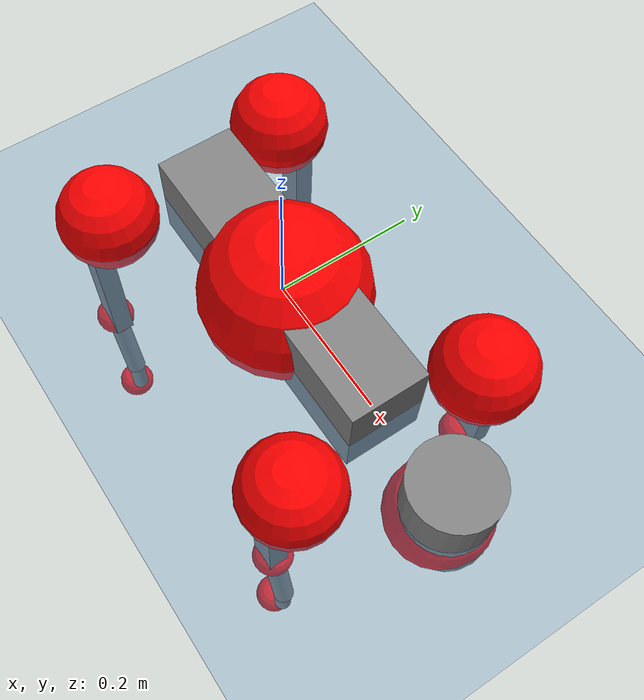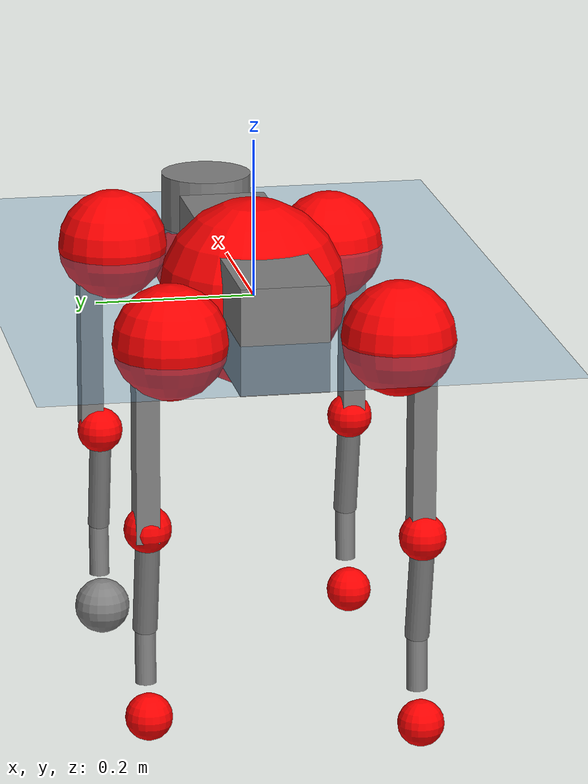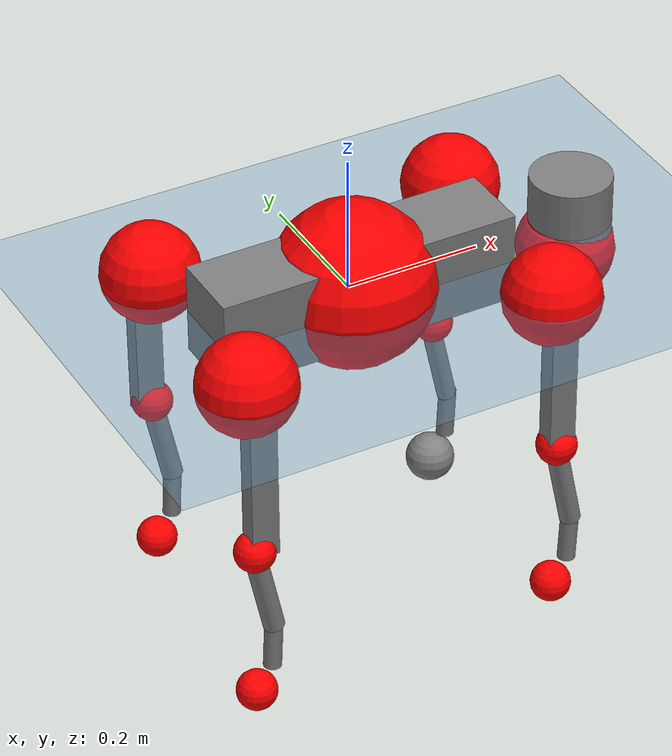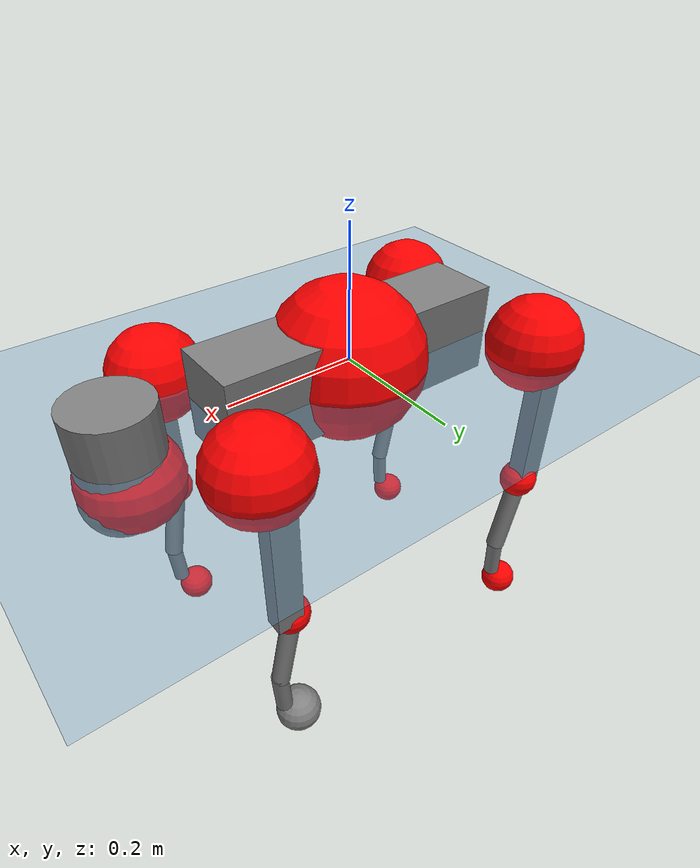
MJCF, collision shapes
<mujoco model="go2">
  <compiler angle="radian" assetdir="assets" balanceinertia="true" inertiafromgeom="false"/>

  <option timestep="0.005" density="1.2" viscosity="2e-05"/>

  <size nkey="1"/>

  <visual>
    <quality shadowsize="8192"/>
    <map shadowclip="0.5"/>
  </visual>

  <default>
    <default class="/">
      <geom contype="0" conaffinity="0" group="1" solref="-1000 -80"/>
      <site size="0.01 0.005 0.005" group="5"/>
      <general forcelimited="true" biastype="affine" gainprm="20" biasprm="0 -20 -0.5"/>
      <default class="go2">
        <joint armature="0.01" damping="0.01" frictionloss="0.2"/>
        <geom condim="1" margin="0.001"/>
        <default class="visual">
          <geom type="mesh" group="2"/>
        </default>
        <default class="collision">
          <geom group="3"/>
          <default class="foot">
            <geom size="0.022 0 0" condim="6" priority="1" friction="0.8 0.02 0.01" solimp="0.015 1 0.022"/>
          </default>
        </default>
        <default class="reward_collision_sphere">
          <geom group="5" rgba="1 0 0 1"/>
        </default>
      </default>
    </default>
  </default>

  <asset>
    <texture type="skybox" colorspace="auto" name="//unnamed_texture_0" builtin="gradient" rgb1="0.95 0.95 0.95" rgb2="0.95 0.95 0.95" width="100" height="600"/>
    <texture type="2d" colorspace="auto" name="texplane" builtin="checker" rgb1="0.345 0.575 0.748" rgb2="0.345 0.575 0.748" markrgb="1 1 1" width="512" height="512"/>
    <material name="MatPlane" class="/" texture="texplane" texuniform="true" texrepeat="2 2" specular="0.9"/>
    <material name="metal" class="/" rgba="0.9 0.95 0.95 1"/>
    <material name="black" class="/" rgba="0 0 0 1"/>
    <material name="white" class="/"/>
    <material name="gray" class="/" rgba="0.671705 0.692426 0.77427 1"/>
    <mesh name="base_0" class="/" file="base_0.obj"/>
    <mesh name="base_1" class="/" file="base_1.obj"/>
    <mesh name="base_2" class="/" file="base_2.obj"/>
    <mesh name="base_3" class="/" file="base_3.obj"/>
    <mesh name="base_4" class="/" file="base_4.obj"/>
    <mesh name="hip_0" class="/" file="hip_0.obj"/>
    <mesh name="hip_1" class="/" file="hip_1.obj"/>
    <mesh name="thigh_0" class="/" file="thigh_0.obj"/>
    <mesh name="thigh_1" class="/" file="thigh_1.obj"/>
    <mesh name="thigh_mirror_0" class="/" file="thigh_mirror_0.obj"/>
    <mesh name="thigh_mirror_1" class="/" file="thigh_mirror_1.obj"/>
    <mesh name="calf_0" class="/" file="calf_0.obj"/>
    <mesh name="calf_1" class="/" file="calf_1.obj"/>
    <mesh name="calf_mirror_0" class="/" file="calf_mirror_0.obj"/>
    <mesh name="calf_mirror_1" class="/" file="calf_mirror_1.obj"/>
    <mesh name="foot" class="/" file="foot.obj"/>
  </asset>

  <worldbody>
    <geom name="floor" class="/" size="100 100 0.125" type="plane" group="0" material="MatPlane"/>
    <light name="toplight_shadow" class="/" pos="0 0 5" dir="0.0990148 0.0990148 -0.990148" type="directional" ambient="0.04 0.04 0.04" diffuse="0.55 0.55 0.55" specular="0.12 0.12 0.12"/>
    <light name="toplight_fill" class="/" pos="0 0 5" dir="0.0990148 0.0990148 -0.990148" type="directional" castshadow="false" ambient="0.04 0.04 0.04" diffuse="0.3 0.3 0.3" specular="0.08 0.08 0.08"/>
    <body name="trunk" childclass="go2" pos="0.00655033 0.000665664 0.00402162" quat="0.999996 0.00079765 -0.00230336 0.00132635">
      <inertial pos="0.0296871 -0.00454101 -0.00423989" quat="0.0266807 0.724326 0.0219514 0.688591" mass="11.5457" diaginertia="0.234195 0.239993 0.0402538"/>
      <joint name="//unnamed_joint_0" type="free" armature="0" damping="0" frictionloss="0"/>
      <geom name="//unnamed_geom_1" class="visual" material="black" mesh="base_0"/>
      <geom name="//unnamed_geom_2" class="visual" material="black" mesh="base_1"/>
      <geom name="//unnamed_geom_3" class="visual" material="black" mesh="base_2"/>
      <geom name="//unnamed_geom_4" class="visual" material="white" mesh="base_3"/>
      <geom name="//unnamed_geom_5" class="visual" material="gray" mesh="base_4"/>
      <geom name="trunk_1" class="collision" size="0.222574 0.0553181 0.0674466" type="box"/>
      <geom name="trunk_2" class="collision" size="0.0591637 0.0532473" pos="0.344546 0 0.0114438" type="cylinder"/>
      <geom name="trunk_3" class="collision" size="0.0556139" pos="0.354218 0 -0.0686625"/>
      <geom name="//unnamed_geom_9" class="reward_collision_sphere" size="0.118327"/>
      <geom name="//unnamed_geom_10" class="reward_collision_sphere" size="0.0709964" pos="0.338501 0 -0.0514969"/>
      <site name="imu" pos="-0.0539575 0.0587074 0.0595817" size="0.0118327"/>
      <camera name="track" pos="0 -2.39302 0" quat="0.707107 0.707107 0 0" mode="trackcom"/>
      <camera name="ego_camera" pos="0.377187 0 0.0514969" quat="-0.5 -0.5 0.5 0.5"/>
      <body name="FL_hip" pos="0.233777 0.0582538 0.00372627" quat="0.999984 -0.00150378 0.000431458 -0.00544153">
        <inertial pos="-0.00235296 0.00410294 0.000826162" quat="0.513927 0.497302 0.478475 0.50954" mass="0.987482" diaginertia="0.00198808 0.00129508 0.000781734"/>
        <joint name="FL_hip_joint" pos="0 0 0" axis="0.999688 -0.0205082 0.0142246" stiffness="0.00635398" range="-1.24033 1.02843" armature="0.00732444" damping="0.0242304" frictionloss="0.230243"/>
        <geom name="//unnamed_geom_11" class="visual" material="metal" mesh="hip_0"/>
        <geom name="//unnamed_geom_12" class="visual" material="gray" mesh="hip_1"/>
        <geom name="//unnamed_geom_13" class="collision" size="0.0544306 0.0236655" pos="0 0.095721 0" quat="0.707107 0.707107 0 0" type="cylinder"/>
        <geom name="//unnamed_geom_14" class="reward_collision_sphere" size="0.0709964" pos="0 0.0837558 0"/>
        <body name="FL_thigh" pos="-0.0024968 0.115218 0.00244881" quat="1 8.71846e-06 -4.31673e-06 6.3666e-06">
          <inertial pos="-0.00615824 -0.0168637 -0.0256325" quat="0.828815 0.0786095 -0.0197129 0.553622" mass="1.94289" diaginertia="0.0157421 0.0154495 0.00176113"/>
          <joint name="FL_thigh_joint" pos="0 0 0" axis="-0.00101905 0.999998 -0.00188198" range="-1.55716 3.26721" armature="0.0145796" damping="0.0663199" frictionloss="0.240797"/>
          <geom name="//unnamed_geom_15" class="visual" material="metal" mesh="thigh_0"/>
          <geom name="//unnamed_geom_16" class="visual" material="gray" mesh="thigh_1"/>
          <geom name="//unnamed_geom_17" class="collision" size="0.126019 0.0144951 0.0201157" pos="0 0 -0.121876" quat="0.707107 0 0.707107 0" type="box"/>
          <body name="FL_calf" pos="-0.0121017 -0.0105257 -0.25012" quat="1 1.4283e-05 3.25134e-05 0.000199817">
            <inertial pos="0.00896553 0.00399305 -0.167881" quat="0.70974 0.00318397 -0.00592618 0.704432" mass="0.358832" diaginertia="0.00362363 0.00368891 0.000107111"/>
            <joint name="FL_calf_joint" pos="0 0 0" axis="0.00132839 0.999966 0.00818572" stiffness="0.0568443" range="-2.8425 -0.659212" armature="0.0120315" damping="0" frictionloss="0.22588"/>
            <geom name="//unnamed_geom_18" class="visual" material="gray" mesh="calf_0"/>
            <geom name="//unnamed_geom_19" class="visual" material="black" mesh="calf_1"/>
            <geom name="FL_calf0" class="collision" size="0.0141993 0.0709964" pos="0.00967147 0 -0.0686625" quat="0.994493 0 -0.104807 0" type="cylinder"/>
            <geom name="//unnamed_geom_21" class="collision" size="0.013016 0.0384564" pos="0.0241787 0 -0.169368" quat="0.999688 0 0.0249974 0" type="cylinder"/>
            <geom name="//unnamed_geom_22" class="visual" pos="0 0 -0.243752" quat="1 0 0 0" material="black" mesh="foot"/>
            <geom name="FL_foot" class="foot" size="0.0361909" pos="-0.00241787 0 -0.243752"/>
            <geom name="//unnamed_geom_24" class="reward_collision_sphere" size="0.0295818"/>
            <geom name="//unnamed_geom_25" class="reward_collision_sphere" size="0.0295818" pos="-0.00241787 0 -0.243752"/>
            <site name="FL_foot" class="foot" pos="-0.00241787 0 -0.243752" size="0.0118327"/>
          </body>
        </body>
      </body>
      <body name="FR_hip" pos="0.230008 -0.0596988 -0.0102193" quat="0.999999 -0.00064661 -8.49103e-05 -0.00077282">
        <inertial pos="-0.00554249 0.00378558 0.00190694" quat="0.50047 0.467167 0.529988 0.500398" mass="0.970146" diaginertia="0.0020931 0.00122663 0.000821605"/>
        <joint name="FR_hip_joint" pos="0 0 0" axis="0.999975 0.00168232 -0.00684566" stiffness="0.00777448" range="-1.18427 1.08023" armature="0.0115112" damping="0" frictionloss="0.213732"/>
        <geom name="//unnamed_geom_26" class="visual" pos="0 4.5419e-10 1.94812e-08" quat="4.63268e-05 1 0 0" material="metal" mesh="hip_0"/>
        <geom name="//unnamed_geom_27" class="visual" pos="0 7.36297e-10 -4.81844e-08" quat="4.63268e-05 1 0 0" material="gray" mesh="hip_1"/>
        <geom name="//unnamed_geom_28" class="collision" size="0.0544306 0.0236655" pos="0 -0.095721 0" quat="0.707107 0.707107 0 0" type="cylinder"/>
        <geom name="//unnamed_geom_29" class="reward_collision_sphere" size="0.0709964" pos="0 -0.0837558 0"/>
        <body name="FR_thigh" pos="-0.00367311 -0.114436 0.00766193" quat="1 -0.000478019 0.000298902 0.000576686">
          <inertial pos="-0.00348145 0.0263151 -0.0269341" quat="0.559669 0.000937052 0.0290835 0.828205" mass="1.63275" diaginertia="0.0141208 0.012444 0.00149808"/>
          <joint name="FR_thigh_joint" pos="0 0 0" axis="-0.00840538 -0.999951 -0.00531839" stiffness="0.00983951" range="-3.28708 1.41813" armature="0.016008" damping="0.0171301" frictionloss="0.231695"/>
          <geom name="//unnamed_geom_30" class="visual" material="metal" mesh="thigh_mirror_0"/>
          <geom name="//unnamed_geom_31" class="visual" material="gray" mesh="thigh_mirror_1"/>
          <geom name="//unnamed_geom_32" class="collision" size="0.126019 0.0144951 0.0201157" pos="0 0 -0.121876" quat="0.707107 0 0.707107 0" type="box"/>
          <body name="FR_calf" pos="0.000843077 0.00195243 -0.242529" quat="1 -0.000101064 0.000287288 2.64227e-05">
            <inertial pos="0.00762281 0.00240802 -0.17392" quat="0.69764 -0.0221736 -0.00941386 0.716044" mass="0.502696" diaginertia="0.00426991 0.00353528 0.000134284"/>
            <joint name="FR_calf_joint" pos="0 0 0" axis="0.00660545 -0.999966 0.00492453" stiffness="0.0228231" range="0.871807 2.8077" armature="0.0076738" damping="0.00388439" frictionloss="0.239967"/>
            <geom name="//unnamed_geom_33" class="visual" material="gray" mesh="calf_mirror_0"/>
            <geom name="//unnamed_geom_34" class="visual" material="black" mesh="calf_mirror_1"/>
            <geom name="FR_calf0" class="collision" size="0.0153826 0.0709964" pos="0.0120893 0 -0.0686625" quat="0.995004 0 -0.0998334 0" type="cylinder"/>
            <geom name="//unnamed_geom_36" class="collision" size="0.013016 0.0384564" pos="0.0241787 0 -0.169368" quat="0.999688 0 0.0249974 0" type="cylinder"/>
            <geom name="//unnamed_geom_37" class="visual" pos="0 0 -0.243752" quat="1 0 0 0" material="black" mesh="foot"/>
            <geom name="FR_foot" class="foot" size="0.0212056" pos="-0.00241787 0 -0.243752"/>
            <geom name="//unnamed_geom_39" class="reward_collision_sphere" size="0.0295818"/>
            <geom name="//unnamed_geom_40" class="reward_collision_sphere" size="0.0295818" pos="-0.00241787 0 -0.243752"/>
            <site name="FR_foot" class="foot" pos="-0.00241787 0 -0.243752" size="0.0118327"/>
          </body>
        </body>
      </body>
      <body name="RL_hip" pos="-0.234088 0.0592253 0.00991297" quat="1 -0.000572263 0.000189778 -0.000180747">
        <inertial pos="0.00800573 0.000892367 0.00964595" quat="0.504037 0.496188 0.500065 0.499679" mass="0.976902" diaginertia="0.00200942 0.00155259 0.000947479"/>
        <joint name="RL_hip_joint" pos="0 0 0" axis="-0.999934 0.00891964 0.0072293" range="-1.27426 0.858859" armature="0.0117045" damping="0.0377261" frictionloss="0.125239"/>
        <geom name="//unnamed_geom_41" class="visual" pos="-5.62404e-10 0 -1.10244e-07" quat="4.63268e-05 0 1 0" material="metal" mesh="hip_0"/>
        <geom name="//unnamed_geom_42" class="visual" pos="-9.11724e-10 0 -9.77708e-08" quat="4.63268e-05 0 1 0" material="gray" mesh="hip_1"/>
        <geom name="//unnamed_geom_43" class="collision" size="0.0544306 0.0236655" pos="0 0.095721 0" quat="0.707107 0.707107 0 0" type="cylinder"/>
        <geom name="//unnamed_geom_44" class="reward_collision_sphere" size="0.0709964" pos="0 0.0837558 0"/>
        <body name="RL_thigh" pos="0.00124296 0.114708 -0.00142607" quat="1 5.00907e-06 -5.69713e-05 3.2163e-05">
          <inertial pos="0.00458025 -0.0263169 -0.025756" quat="0.815508 0.115154 0.00806717 0.567117" mass="1.83481" diaginertia="0.0166825 0.0141037 0.00186077"/>
          <joint name="RL_thigh_joint" pos="0 0 0" axis="-0.0446826 0.998991 -0.00444148" stiffness="0.00853388" range="-0.336335 4.54031" armature="0.0105055" damping="0.00177051" frictionloss="0.217524"/>
          <geom name="//unnamed_geom_45" class="visual" material="metal" mesh="thigh_0"/>
          <geom name="//unnamed_geom_46" class="visual" material="gray" mesh="thigh_1"/>
          <geom name="//unnamed_geom_47" class="collision" size="0.126019 0.0144951 0.0201157" pos="0 0 -0.121876" quat="0.707107 0 0.707107 0" type="box"/>
          <body name="RL_calf" pos="0.00558459 -0.00318827 -0.236746" quat="1 8.07235e-05 -0.000701678 -0.000143935">
            <inertial pos="0.00285247 0.00442288 -0.167774" quat="0.701694 -0.0147985 0.0285433 0.711752" mass="0.440575" diaginertia="0.00386602 0.00351244 0.000108374"/>
            <joint name="RL_calf_joint" pos="0 0 0" axis="0.00530831 0.999772 0.0206714" stiffness="0.0589814" range="-2.76117 -0.829016" armature="0.0117871" damping="0.00760465" frictionloss="0.178088"/>
            <geom name="//unnamed_geom_48" class="visual" material="gray" mesh="calf_0"/>
            <geom name="//unnamed_geom_49" class="visual" material="black" mesh="calf_1"/>
            <geom name="RL_calf0" class="collision" size="0.0153826 0.0709964" pos="0.0120893 0 -0.0686625" quat="0.995004 0 -0.0998334 0" type="cylinder"/>
            <geom name="//unnamed_geom_51" class="collision" size="0.013016 0.0384564" pos="0.0241787 0 -0.169368" quat="0.999688 0 0.0249974 0" type="cylinder"/>
            <geom name="//unnamed_geom_52" class="visual" pos="0 0 -0.243752" quat="1 0 0 0" material="black" mesh="foot"/>
            <geom name="RL_foot" class="foot" size="0.023551" pos="-0.00241787 0 -0.243752"/>
            <geom name="//unnamed_geom_54" class="reward_collision_sphere" size="0.0295818"/>
            <geom name="//unnamed_geom_55" class="reward_collision_sphere" size="0.0295818" pos="-0.00241787 0 -0.243752"/>
            <site name="RL_foot" class="foot" pos="-0.00241787 0 -0.243752" size="0.0118327"/>
          </body>
        </body>
      </body>
      <body name="RR_hip" pos="-0.232557 -0.0542543 0.000103632" quat="0.999999 -0.000995929 6.73458e-05 0.000725455">
        <inertial pos="0.00819342 -0.011487 0.00643346" quat="0.499287 0.495835 0.499103 0.505723" mass="1.22771" diaginertia="0.00258966 0.00166467 0.00106803"/>
        <joint name="RR_hip_joint" pos="0 0 0" axis="-0.999939 0.00629076 -0.0090724" range="-1.09639 1.20484" armature="0.0142832" damping="0.0543944" frictionloss="0.210417"/>
        <geom name="//unnamed_geom_56" class="visual" pos="5.61974e-10 4.5419e-10 -1.29725e-07" quat="2.14617e-09 4.63268e-05 4.63268e-05 -1" material="metal" mesh="hip_0"/>
        <geom name="//unnamed_geom_57" class="visual" pos="9.12787e-10 7.36297e-10 -4.95865e-08" quat="2.14617e-09 4.63268e-05 4.63268e-05 -1" material="gray" mesh="hip_1"/>
        <geom name="//unnamed_geom_58" class="collision" size="0.0544306 0.0236655" pos="0 -0.095721 0" quat="0.707107 0.707107 0 0" type="cylinder"/>
        <geom name="//unnamed_geom_59" class="reward_collision_sphere" size="0.0709964" pos="0 -0.0837558 0"/>
        <body name="RR_thigh" pos="0.000341699 -0.113625 -0.0101351" quat="1 4.7598e-06 4.444e-05 8.78525e-05">
          <inertial pos="0.000879321 0.0200685 -0.0376474" quat="0.551333 -0.0197203 0.0848333 0.829727" mass="2.31116" diaginertia="0.0161912 0.0155258 0.00171161"/>
          <joint name="RR_thigh_joint" pos="0 0 0" axis="0.0127111 -0.999856 -0.01126" range="-4.33508 0.337316" armature="0.0125894" damping="0.0090627" frictionloss="0.333295"/>
          <geom name="//unnamed_geom_60" class="visual" material="metal" mesh="thigh_mirror_0"/>
          <geom name="//unnamed_geom_61" class="visual" material="gray" mesh="thigh_mirror_1"/>
          <geom name="//unnamed_geom_62" class="collision" size="0.126019 0.0144951 0.0201157" pos="0 0 -0.121876" quat="0.707107 0 0.707107 0" type="box"/>
          <body name="RR_calf" pos="-0.0104426 -0.000609695 -0.243963" quat="1 -6.96972e-05 -5.31469e-05 3.30396e-05">
            <inertial pos="0.00552901 0.000759016 -0.162624" quat="0.703433 -0.00622641 0.00359464 0.710725" mass="0.467778" diaginertia="0.00415018 0.00379136 0.000114327"/>
            <joint name="RR_calf_joint" pos="0 0 0" axis="0.0238721 -0.999664 -0.010102" stiffness="0.0363533" range="0.84079 2.62526" armature="0.0137567" damping="0.0609053" frictionloss="0.215971"/>
            <geom name="//unnamed_geom_63" class="visual" material="gray" mesh="calf_mirror_0"/>
            <geom name="//unnamed_geom_64" class="visual" material="black" mesh="calf_mirror_1"/>
            <geom name="RR_calf0" class="collision" size="0.0153826 0.0709964" pos="0.0120893 0 -0.0686625" quat="0.995004 0 -0.0998334 0" type="cylinder"/>
            <geom name="//unnamed_geom_66" class="collision" size="0.013016 0.0384564" pos="0.0241787 0 -0.169368" quat="0.999688 0 0.0249974 0" type="cylinder"/>
            <geom name="//unnamed_geom_67" class="visual" pos="0 0 -0.243752" quat="1 0 0 0" material="black" mesh="foot"/>
            <geom name="RR_foot" class="foot" size="0.0258067" pos="-0.00241787 0 -0.243752"/>
            <geom name="//unnamed_geom_69" class="reward_collision_sphere" size="0.0295818"/>
            <geom name="//unnamed_geom_70" class="reward_collision_sphere" size="0.0295818" pos="-0.00241787 0 -0.243752"/>
            <site name="RR_foot" class="foot" pos="-0.00241787 0 -0.243752" size="0.0118327"/>
          </body>
        </body>
      </body>
    </body>
  </worldbody>

  <contact>
    <pair class="/" geom1="floor" geom2="FL_foot" name="//unnamed_contact_0"/>
    <pair class="/" geom1="floor" geom2="FR_foot" name="//unnamed_contact_1"/>
    <pair class="/" geom1="floor" geom2="RL_foot" name="//unnamed_contact_2"/>
    <pair class="/" geom1="floor" geom2="RR_foot" name="//unnamed_contact_3"/>
  </contact>

  <actuator>
    <general name="FL_hip" class="/" joint="FL_hip_joint" forcerange="-28.3334 28.3334" gainprm="24.8205" biasprm="0 -24.8205 -0.459127"/>
    <general name="FL_thigh" class="/" joint="FL_thigh_joint" forcerange="-19.1133 19.1133" gainprm="24.8205" biasprm="0 -24.8205 -0.459127"/>
    <general name="FL_calf" class="/" joint="FL_calf_joint" forcerange="-73.0014 73.0014" gainprm="24.8205" biasprm="0 -24.8205 -0.459127"/>
    <general name="FR_hip" class="/" joint="FR_hip_joint" forcerange="-29.4898 29.4898" gainprm="24.8205" biasprm="0 -24.8205 -0.459127"/>
    <general name="FR_thigh" class="/" joint="FR_thigh_joint" forcerange="-22.5809 22.5809" gainprm="24.8205" biasprm="0 -24.8205 -0.459127"/>
    <general name="FR_calf" class="/" joint="FR_calf_joint" forcerange="-29.1128 29.1128" gainprm="24.8205" biasprm="0 -24.8205 -0.459127"/>
    <general name="RL_hip" class="/" joint="RL_hip_joint" forcerange="-17.7531 17.7531" gainprm="24.8205" biasprm="0 -24.8205 -0.459127"/>
    <general name="RL_thigh" class="/" joint="RL_thigh_joint" forcerange="-24.1244 24.1244" gainprm="24.8205" biasprm="0 -24.8205 -0.459127"/>
    <general name="RL_calf" class="/" joint="RL_calf_joint" forcerange="-58.7438 58.7438" gainprm="24.8205" biasprm="0 -24.8205 -0.459127"/>
    <general name="RR_hip" class="/" joint="RR_hip_joint" forcerange="-26.0357 26.0357" gainprm="24.8205" biasprm="0 -24.8205 -0.459127"/>
    <general name="RR_thigh" class="/" joint="RR_thigh_joint" forcerange="-40.0172 40.0172" gainprm="24.8205" biasprm="0 -24.8205 -0.459127"/>
    <general name="RR_calf" class="/" joint="RR_calf_joint" forcerange="-69.4664 69.4664" gainprm="24.8205" biasprm="0 -24.8205 -0.459127"/>
  </actuator>

  <sensor>
    <gyro site="imu" name="imu_angular_velocity"/>
    <velocimeter site="imu" name="imu_linear_velocity"/>
    <framelinvel objtype="site" objname="FL_foot" name="FL_foot_global_linear_velocity"/>
    <framelinvel objtype="site" objname="FR_foot" name="FR_foot_global_linear_velocity"/>
    <framelinvel objtype="site" objname="RL_foot" name="RL_foot_global_linear_velocity"/>
    <framelinvel objtype="site" objname="RR_foot" name="RR_foot_global_linear_velocity"/>
  </sensor>

  <keyframe>
    <key name="home" qpos="0 0 0.325 1 0 0 0 0.1 0.8 -1.5 -0.1 -0.8 1.5 -0.1 0.8 -1.5 0.1 -0.8 1.5"/>
  </keyframe>
</mujoco>
